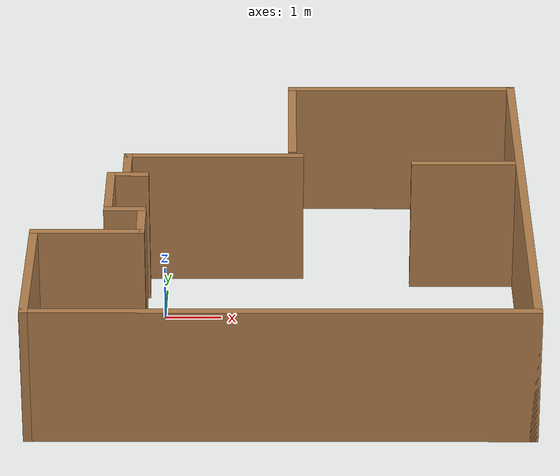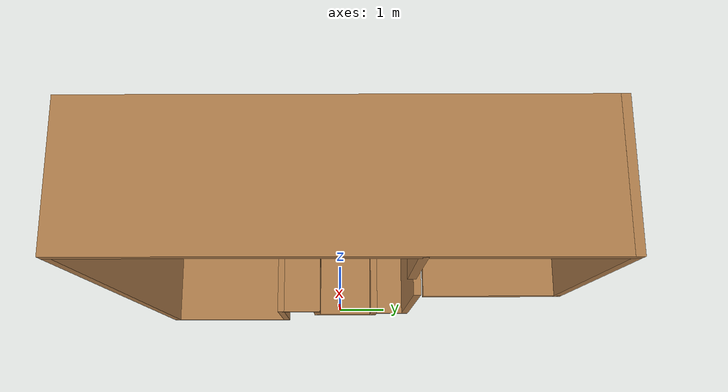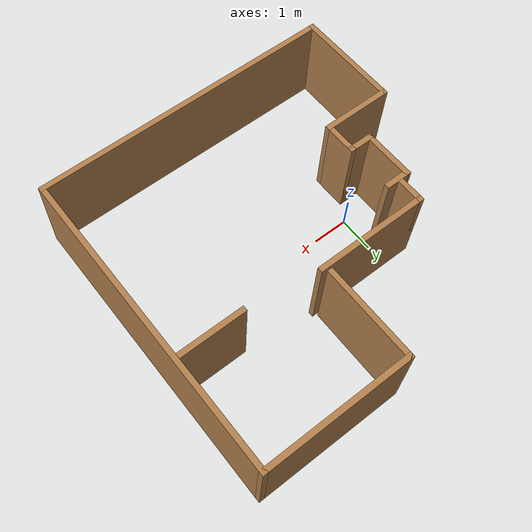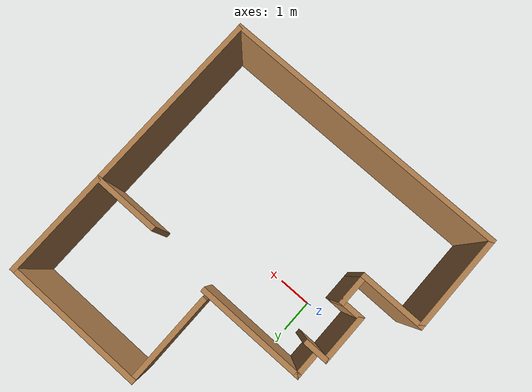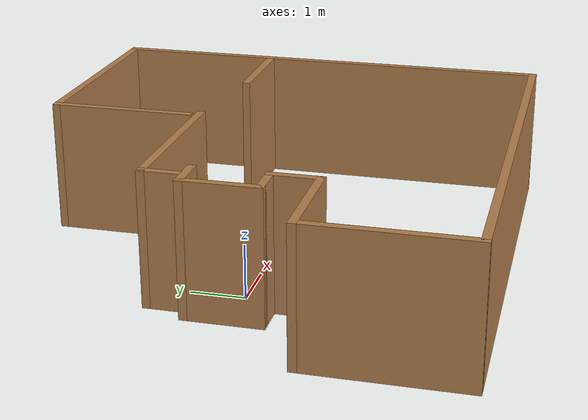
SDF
<?xml version='1.0'?>
<sdf version='1.7'>
  <model name='Untitled'>
    <pose>2.0795 0.039 0 0 -0 0</pose>
    <link name='Wall_0'>
      <collision name='Wall_0_Collision'>
        <geometry>
          <box>
            <size>1.5 0.15 2.5</size>
          </box>
        </geometry>
        <pose>0 0 1.25 0 -0 0</pose>
      </collision>
      <visual name='Wall_0_Visual'>
        <pose>0 0 1.25 0 -0 0</pose>
        <geometry>
          <box>
            <size>1.5 0.15 2.5</size>
          </box>
        </geometry>
        <material>
          <script>
            <uri>file://media/materials/scripts/gazebo.material</uri>
            <name>Gazebo/Wood</name>
          </script>
          <ambient>1 1 1 1</ambient>
        </material>
        <meta>
          <layer>0</layer>
        </meta>
      </visual>
      <pose>-3.05 0.075 0 0 -0 -1.5708</pose>
    </link>
    <link name='Wall_10'>
      <collision name='Wall_10_Collision'>
        <geometry>
          <box>
            <size>3.25 0.15 2.5</size>
          </box>
        </geometry>
        <pose>0 0 1.25 0 -0 0</pose>
      </collision>
      <visual name='Wall_10_Visual'>
        <pose>0 0 1.25 0 -0 0</pose>
        <geometry>
          <box>
            <size>3.25 0.15 2.5</size>
          </box>
        </geometry>
        <material>
          <script>
            <uri>file://media/materials/scripts/gazebo.material</uri>
            <name>Gazebo/Wood</name>
          </script>
          <ambient>1 1 1 1</ambient>
        </material>
        <meta>
          <layer>0</layer>
        </meta>
      </visual>
      <pose>-1.2235 1.4995 0 0 -0 0</pose>
    </link>
    <link name='Wall_12'>
      <collision name='Wall_12_Collision'>
        <geometry>
          <box>
            <size>0.75 0.15 2.5</size>
          </box>
        </geometry>
        <pose>0 0 1.25 0 -0 0</pose>
      </collision>
      <visual name='Wall_12_Visual'>
        <pose>0 0 1.25 0 -0 0</pose>
        <geometry>
          <box>
            <size>0.75 0.15 2.5</size>
          </box>
        </geometry>
        <material>
          <script>
            <uri>file://media/materials/scripts/gazebo.material</uri>
            <name>Gazebo/Wood</name>
          </script>
          <ambient>1 1 1 1</ambient>
        </material>
        <meta>
          <layer>0</layer>
        </meta>
      </visual>
      <pose>-2.7735 1.1995 0 0 -0 -1.5708</pose>
    </link>
    <link name='Wall_15'>
      <collision name='Wall_15_Collision'>
        <geometry>
          <box>
            <size>1 0.15 2.5</size>
          </box>
        </geometry>
        <pose>0 0 1.25 0 -0 0</pose>
      </collision>
      <visual name='Wall_15_Visual'>
        <pose>0 0 1.25 0 -0 0</pose>
        <geometry>
          <box>
            <size>1 0.15 2.5</size>
          </box>
        </geometry>
        <material>
          <script>
            <uri>file://media/materials/scripts/gazebo.material</uri>
            <name>Gazebo/Wood</name>
          </script>
          <ambient>1 1 1 1</ambient>
        </material>
        <meta>
          <layer>0</layer>
        </meta>
      </visual>
      <pose>-2.45 -1.025 0 0 -0 -1.5708</pose>
    </link>
    <link name='Wall_16'>
      <collision name='Wall_16_Collision'>
        <geometry>
          <box>
            <size>2 0.15 2.5</size>
          </box>
        </geometry>
        <pose>0 0 1.25 0 -0 0</pose>
      </collision>
      <visual name='Wall_16_Visual'>
        <pose>0 0 1.25 0 -0 0</pose>
        <geometry>
          <box>
            <size>2 0.15 2.5</size>
          </box>
        </geometry>
        <material>
          <script>
            <uri>file://media/materials/scripts/gazebo.material</uri>
            <name>Gazebo/Wood</name>
          </script>
          <ambient>1 1 1 1</ambient>
        </material>
        <meta>
          <layer>0</layer>
        </meta>
      </visual>
      <pose>-3.375 -1.45 0 0 -0 3.14159</pose>
    </link>
    <link name='Wall_18'>
      <collision name='Wall_18_Collision'>
        <geometry>
          <box>
            <size>3 0.15 2.5</size>
          </box>
        </geometry>
        <pose>0 0 1.25 0 -0 0</pose>
      </collision>
      <visual name='Wall_18_Visual'>
        <pose>0 0 1.25 0 -0 0</pose>
        <geometry>
          <box>
            <size>3 0.15 2.5</size>
          </box>
        </geometry>
        <material>
          <script>
            <uri>file://media/materials/scripts/gazebo.material</uri>
            <name>Gazebo/Wood</name>
          </script>
          <ambient>1 1 1 1</ambient>
        </material>
        <meta>
          <layer>0</layer>
        </meta>
      </visual>
      <pose>-4.3 -2.875 0 0 -0 -1.5708</pose>
    </link>
    <link name='Wall_19'>
      <collision name='Wall_19_Collision'>
        <geometry>
          <box>
            <size>8.75 0.15 2.5</size>
          </box>
        </geometry>
        <pose>0 0 1.25 0 -0 0</pose>
      </collision>
      <visual name='Wall_19_Visual'>
        <pose>0 0 1.25 0 -0 0</pose>
        <geometry>
          <box>
            <size>8.75 0.15 2.5</size>
          </box>
        </geometry>
        <material>
          <script>
            <uri>file://media/materials/scripts/gazebo.material</uri>
            <name>Gazebo/Wood</name>
          </script>
          <ambient>1 1 1 1</ambient>
        </material>
        <meta>
          <layer>0</layer>
        </meta>
      </visual>
      <pose>-0 -4.3 0 0 -0 0</pose>
    </link>
    <link name='Wall_2'>
      <collision name='Wall_2_Collision'>
        <geometry>
          <box>
            <size>0.75 0.15 2.5</size>
          </box>
        </geometry>
        <pose>0 0 1.25 0 -0 0</pose>
      </collision>
      <visual name='Wall_2_Visual'>
        <pose>0 0 1.25 0 -0 0</pose>
        <geometry>
          <box>
            <size>0.75 0.15 2.5</size>
          </box>
        </geometry>
        <material>
          <script>
            <uri>file://media/materials/scripts/gazebo.material</uri>
            <name>Gazebo/Wood</name>
          </script>
          <ambient>1 1 1 1</ambient>
        </material>
        <meta>
          <layer>0</layer>
        </meta>
      </visual>
      <pose>-2.75 -0.6 0 0 -0 0</pose>
    </link>
    <link name='Wall_21'>
      <collision name='Wall_21_Collision'>
        <geometry>
          <box>
            <size>8.75 0.15 2.5</size>
          </box>
        </geometry>
        <pose>0 0 1.25 0 -0 0</pose>
      </collision>
      <visual name='Wall_21_Visual'>
        <pose>0 0 1.25 0 -0 0</pose>
        <geometry>
          <box>
            <size>8.75 0.15 2.5</size>
          </box>
        </geometry>
        <material>
          <script>
            <uri>file://media/materials/scripts/gazebo.material</uri>
            <name>Gazebo/Wood</name>
          </script>
          <ambient>1 1 1 1</ambient>
        </material>
        <meta>
          <layer>0</layer>
        </meta>
      </visual>
      <pose>4.3 -0 0 0 -0 1.5708</pose>
    </link>
    <link name='Wall_22'>
      <collision name='Wall_22_Collision'>
        <geometry>
          <box>
            <size>4.25 0.15 2.5</size>
          </box>
        </geometry>
        <pose>0 0 1.25 0 -0 0</pose>
      </collision>
      <visual name='Wall_22_Visual'>
        <pose>0 0 1.25 0 -0 0</pose>
        <geometry>
          <box>
            <size>4.25 0.15 2.5</size>
          </box>
        </geometry>
        <material>
          <script>
            <uri>file://media/materials/scripts/gazebo.material</uri>
            <name>Gazebo/Wood</name>
          </script>
          <ambient>1 1 1 1</ambient>
        </material>
        <meta>
          <layer>0</layer>
        </meta>
      </visual>
      <pose>2.25 4.3 0 0 -0 3.14159</pose>
    </link>
    <link name='Wall_23'>
      <collision name='Wall_23_Collision'>
        <geometry>
          <box>
            <size>2.75 0.15 2.5</size>
          </box>
        </geometry>
        <pose>0 0 1.25 0 -0 0</pose>
      </collision>
      <visual name='Wall_23_Visual'>
        <pose>0 0 1.25 0 -0 0</pose>
        <geometry>
          <box>
            <size>2.75 0.15 2.5</size>
          </box>
        </geometry>
        <material>
          <script>
            <uri>file://media/materials/scripts/gazebo.material</uri>
            <name>Gazebo/Wood</name>
          </script>
          <ambient>1 1 1 1</ambient>
        </material>
        <meta>
          <layer>0</layer>
        </meta>
      </visual>
      <pose>0.2 3 0 0 -0 -1.5708</pose>
    </link>
    <link name='Wall_25'>
      <collision name='Wall_25_Collision'>
        <geometry>
          <box>
            <size>2 0.15 2.5</size>
          </box>
        </geometry>
        <pose>0 0 1.25 0 -0 0</pose>
      </collision>
      <visual name='Wall_25_Visual'>
        <pose>0 0 1.25 0 -0 0</pose>
        <geometry>
          <box>
            <size>2 0.15 2.5</size>
          </box>
        </geometry>
        <material>
          <script>
            <uri>file://media/materials/scripts/gazebo.material</uri>
            <name>Gazebo/Wood</name>
          </script>
          <ambient>1 1 1 1</ambient>
        </material>
        <meta>
          <layer>0</layer>
        </meta>
      </visual>
      <pose>3.34624 1.2084 0 0 -0 3.14159</pose>
    </link>
    <link name='Wall_4'>
      <collision name='Wall_4_Collision'>
        <geometry>
          <box>
            <size>0.75 0.15 2.5</size>
          </box>
        </geometry>
        <pose>0 0 1.25 0 -0 0</pose>
      </collision>
      <visual name='Wall_4_Visual'>
        <pose>0 0 1.25 0 -0 0</pose>
        <geometry>
          <box>
            <size>0.75 0.15 2.5</size>
          </box>
        </geometry>
        <material>
          <script>
            <uri>file://media/materials/scripts/gazebo.material</uri>
            <name>Gazebo/Wood</name>
          </script>
          <ambient>1 1 1 1</ambient>
        </material>
        <meta>
          <layer>0</layer>
        </meta>
      </visual>
      <pose>-2.75 0.75 0 0 -0 0</pose>
    </link>
    <static>1</static>
  </model>
</sdf>
